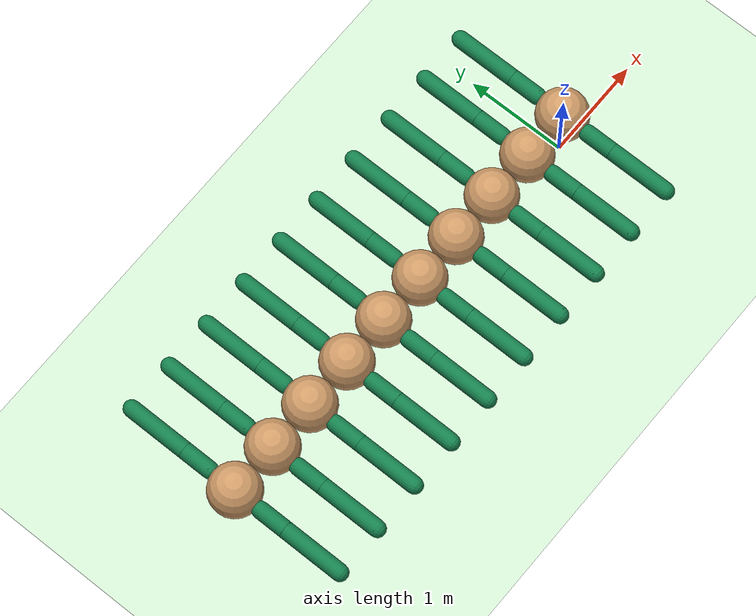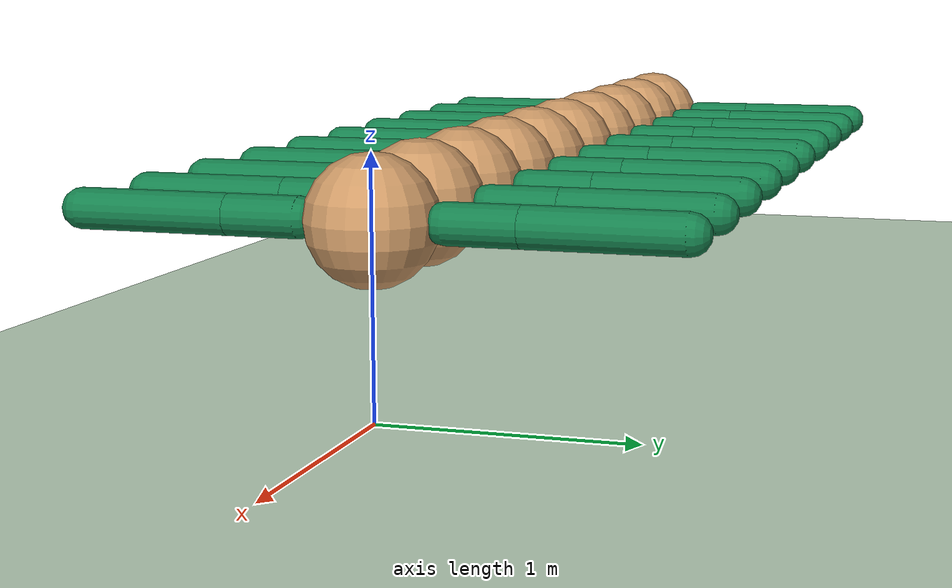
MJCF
<mujoco model="centipede">
  <compiler angle="degree" coordinate="local" inertiafromgeom="true"/>

  <option integrator="RK4" timestep="0.01"/>

  <default>
    <joint armature="1" damping="1" limited="true"/>
    <geom conaffinity="0" condim="3" density="25.0" friction="1.5 0.1 0.1" margin="0.01" rgba="0.8 0.6 0.4 1"/>
  </default>

  <asset>
    <texture builtin="gradient" height="100" rgb1="1 1 1" rgb2="0 0 0" type="skybox" width="100"/>
    <texture builtin="flat" height="1278" mark="cross" markrgb="1 1 1" name="texgeom" random="0.01" rgb1="0.8 0.6 0.4" rgb2="0.8 0.6 0.4" type="cube" width="127"/>
    <texture builtin="checker" height="100" name="texplane" rgb1="0 0 0" rgb2="0.8 0.8 0.8" type="2d" width="100"/>
    <material name="MatPlane" reflectance="0.5" shininess="1" specular="1" texrepeat="60 60" texture="texplane"/>
    <material name="geom" texture="texgeom" texuniform="true"/>
  </asset>

  <worldbody>
    <light cutoff="100" diffuse="1 1 1" dir="-0 0 -1.3" directional="true" exponent="1" pos="0 0 1.3" specular=".1 .1 .1"/>
    <geom conaffinity="1" condim="3" material="MatPlane" name="floor" pos="0 0 0" rgba="0.8 0.9 0.8 1" size="40 40 40" type="plane"/>
    <body name="torso" pos="0 0 0.75">
      <camera name="track" mode="trackcom" pos="0 -10 2" xyaxes="1 0 0 0 0 1"/>
      <geom name="torso_geom" pos="0 0 0" size="0.25" type="sphere" density="100"/>
      <joint armature="0" damping="0" limited="false" margin="0.01" name="root" pos="0 0 0" type="free"/>

      <body name="left_leg_0" pos="0.0 -0.28 0">
        <joint axis="0 0 1" name="hip_left_0" pos="0.0 0.0 0.0" range="-40 40" type="hinge"/>
        <geom fromto="0.0 0.0 0.0 0.0 -0.28 0.0" name="left_leg_0_geom" size="0.08" type="capsule" rgba=".08 .5 .3 1"/>
        <body pos="0 -0.28 0" name="aux_left_0">
          <joint axis="1 0 0" name="ankle_left_0" pos="0.0 0.0 0.0" range="30 100" type="hinge"/>
          <geom fromto="0.0 0.0 0.0 0 -0.6 0.0" name="left_ankle_0_geom" size="0.08" type="capsule" rgba=".08 .5 .3 1"/>
        </body>
      </body>

      <body name="right_leg_0" pos="0.0 0.28 0">
        <joint axis="0 0 -1" name="hip_right_0" pos="0.0 0.0 0.0" range="-40 40" type="hinge"/>
        <geom fromto="0.0 0.0 0.0 0.0 0.28 0.0" name="right_leg_0_geom" size="0.08" type="capsule" rgba=".08 .5 .3 1"/>
        <body pos="0 0.28 0" name="aux_right_0">
          <joint axis="-1 0 0" name="ankle_right_0" pos="0.0 0.0 0.0" range="30 100" type="hinge"/>
          <geom fromto="0.0 0.0 0.0 0 0.6 0.0" name="right_ankle_0_geom" size="0.08" type="capsule" rgba=".08 .5 .3 1"/>
        </body>
      </body>
        <body name="torso_1" pos="-0.50 0 0">
          <geom name="torso_1_geom" pos="0 0 0" size="0.25" type="sphere" density="100"/>
          <joint axis="0 0 1" name="connector_rl_1" pos="0.25 0.0 0.0" range="-20 20" type="hinge"/>
          <joint axis="0 1 0" name="connector_ud_1" pos="0.25 0.0 0.0" range="-10 30" type="hinge"/>

          <body name="left_leg_1" pos="0.0 -0.28 0">
            <joint axis="0 0 1" name="hip_left_1" pos="0.0 0.0 0.0" range="-40 40" type="hinge"/>
            <geom fromto="0.0 0.0 0.0 0.0 -0.28 0.0" name="left_leg_1_geom" size="0.08" type="capsule" rgba=".08 .5 .3 1"/>
            <body pos="0 -0.28 0" name="aux_left_1">
              <joint axis="1 0 0" name="ankle_left_1" pos="0.0 0.0 0.0" range="30 100" type="hinge"/>
              <geom fromto="0.0 0.0 0.0 0 -0.6 0.0" name="left_ankle_1_geom" size="0.08" type="capsule" rgba=".08 .5 .3 1"/>
            </body>
          </body>

          <body name="right_leg_1" pos="0.0 0.28 0">
            <joint axis="0 0 -1" name="hip_right_1" pos="0.0 0.0 0.0" range="-40 40" type="hinge"/>
            <geom fromto="0.0 0.0 0.0 0.0 0.28 0.0" name="right_leg_1_geom" size="0.08" type="capsule" rgba=".08 .5 .3 1"/>
            <body pos="0 0.28 0" name="aux_right_1">
              <joint axis="-1 0 0" name="ankle_right_1" pos="0.0 0.0 0.0" range="30 100" type="hinge"/>
              <geom fromto="0.0 0.0 0.0 0 0.6 0.0" name="right_ankle_1_geom" size="0.08" type="capsule" rgba=".08 .5 .3 1"/>
            </body>
          </body>
          <body name="torso_2" pos="-0.50 0 0">
            <geom name="torso_2_geom" pos="0 0 0" size="0.25" type="sphere" density="100"/>
            <joint axis="0 0 1" name="connector_rl_2" pos="0.25 0.0 0.0" range="-20 20" type="hinge"/>
            <joint axis="0 1 0" name="connector_ud_2" pos="0.25 0.0 0.0" range="-10 30" type="hinge"/>

            <body name="left_leg_2" pos="0.0 -0.28 0">
              <joint axis="0 0 1" name="hip_left_2" pos="0.0 0.0 0.0" range="-40 40" type="hinge"/>
              <geom fromto="0.0 0.0 0.0 0.0 -0.28 0.0" name="left_leg_2_geom" size="0.08" type="capsule" rgba=".08 .5 .3 1"/>
              <body pos="0 -0.28 0" name="aux_left_2">
                <joint axis="1 0 0" name="ankle_left_2" pos="0.0 0.0 0.0" range="30 100" type="hinge"/>
                <geom fromto="0.0 0.0 0.0 0 -0.6 0.0" name="left_ankle_2_geom" size="0.08" type="capsule" rgba=".08 .5 .3 1"/>
              </body>
            </body>

            <body name="right_leg_2" pos="0.0 0.28 0">
              <joint axis="0 0 -1" name="hip_right_2" pos="0.0 0.0 0.0" range="-40 40" type="hinge"/>
              <geom fromto="0.0 0.0 0.0 0.0 0.28 0.0" name="right_leg_2_geom" size="0.08" type="capsule" rgba=".08 .5 .3 1"/>
              <body pos="0 0.28 0" name="aux_right_2">
                <joint axis="-1 0 0" name="ankle_right_2" pos="0.0 0.0 0.0" range="30 100" type="hinge"/>
                <geom fromto="0.0 0.0 0.0 0 0.6 0.0" name="right_ankle_2_geom" size="0.08" type="capsule" rgba=".08 .5 .3 1"/>
              </body>
            </body>
            <body name="torso_3" pos="-0.50 0 0">
              <geom name="torso_3_geom" pos="0 0 0" size="0.25" type="sphere" density="100"/>
              <joint axis="0 0 1" name="connector_rl_3" pos="0.25 0.0 0.0" range="-20 20" type="hinge"/>
              <joint axis="0 1 0" name="connector_ud_3" pos="0.25 0.0 0.0" range="-10 30" type="hinge"/>

              <body name="left_leg_3" pos="0.0 -0.28 0">
                <joint axis="0 0 1" name="hip_left_3" pos="0.0 0.0 0.0" range="-40 40" type="hinge"/>
                <geom fromto="0.0 0.0 0.0 0.0 -0.28 0.0" name="left_leg_3_geom" size="0.08" type="capsule" rgba=".08 .5 .3 1"/>
                <body pos="0 -0.28 0" name="aux_left_3">
                  <joint axis="1 0 0" name="ankle_left_3" pos="0.0 0.0 0.0" range="30 100" type="hinge"/>
                  <geom fromto="0.0 0.0 0.0 0 -0.6 0.0" name="left_ankle_3_geom" size="0.08" type="capsule" rgba=".08 .5 .3 1"/>
                </body>
              </body>

              <body name="right_leg_3" pos="0.0 0.28 0">
                <joint axis="0 0 -1" name="hip_right_3" pos="0.0 0.0 0.0" range="-40 40" type="hinge"/>
                <geom fromto="0.0 0.0 0.0 0.0 0.28 0.0" name="right_leg_3_geom" size="0.08" type="capsule" rgba=".08 .5 .3 1"/>
                <body pos="0 0.28 0" name="aux_right_3">
                  <joint axis="-1 0 0" name="ankle_right_3" pos="0.0 0.0 0.0" range="30 100" type="hinge"/>
                  <geom fromto="0.0 0.0 0.0 0 0.6 0.0" name="right_ankle_3_geom" size="0.08" type="capsule" rgba=".08 .5 .3 1"/>
                </body>
              </body>
              <body name="torso_4" pos="-0.50 0 0">
                <geom name="torso_4_geom" pos="0 0 0" size="0.25" type="sphere" density="100"/>
                <joint axis="0 0 1" name="connector_rl_4" pos="0.25 0.0 0.0" range="-20 20" type="hinge"/>
                <joint axis="0 1 0" name="connector_ud_4" pos="0.25 0.0 0.0" range="-10 30" type="hinge"/>

                <body name="left_leg_4" pos="0.0 -0.28 0">
                  <joint axis="0 0 1" name="hip_left_4" pos="0.0 0.0 0.0" range="-40 40" type="hinge"/>
                  <geom fromto="0.0 0.0 0.0 0.0 -0.28 0.0" name="left_leg_4_geom" size="0.08" type="capsule" rgba=".08 .5 .3 1"/>
                  <body pos="0 -0.28 0" name="aux_left_4">
                    <joint axis="1 0 0" name="ankle_left_4" pos="0.0 0.0 0.0" range="30 100" type="hinge"/>
                    <geom fromto="0.0 0.0 0.0 0 -0.6 0.0" name="left_ankle_4_geom" size="0.08" type="capsule" rgba=".08 .5 .3 1"/>
                  </body>
                </body>

                <body name="right_leg_4" pos="0.0 0.28 0">
                  <joint axis="0 0 -1" name="hip_right_4" pos="0.0 0.0 0.0" range="-40 40" type="hinge"/>
                  <geom fromto="0.0 0.0 0.0 0.0 0.28 0.0" name="right_leg_4_geom" size="0.08" type="capsule" rgba=".08 .5 .3 1"/>
                  <body pos="0 0.28 0" name="aux_right_4">
                    <joint axis="-1 0 0" name="ankle_right_4" pos="0.0 0.0 0.0" range="30 100" type="hinge"/>
                    <geom fromto="0.0 0.0 0.0 0 0.6 0.0" name="right_ankle_4_geom" size="0.08" type="capsule" rgba=".08 .5 .3 1"/>
                  </body>
                </body>
                <body name="torso_5" pos="-0.50 0 0">
                  <geom name="torso_5_geom" pos="0 0 0" size="0.25" type="sphere" density="100"/>
                  <joint axis="0 0 1" name="connector_rl_5" pos="0.25 0.0 0.0" range="-20 20" type="hinge"/>
                  <joint axis="0 1 0" name="connector_ud_5" pos="0.25 0.0 0.0" range="-10 30" type="hinge"/>

                  <body name="left_leg_5" pos="0.0 -0.28 0">
                    <joint axis="0 0 1" name="hip_left_5" pos="0.0 0.0 0.0" range="-40 40" type="hinge"/>
                    <geom fromto="0.0 0.0 0.0 0.0 -0.28 0.0" name="left_leg_5_geom" size="0.08" type="capsule" rgba=".08 .5 .3 1"/>
                    <body pos="0 -0.28 0" name="aux_left_5">
                      <joint axis="1 0 0" name="ankle_left_5" pos="0.0 0.0 0.0" range="30 100" type="hinge"/>
                      <geom fromto="0.0 0.0 0.0 0 -0.6 0.0" name="left_ankle_5_geom" size="0.08" type="capsule" rgba=".08 .5 .3 1"/>
                    </body>
                  </body>

                  <body name="right_leg_5" pos="0.0 0.28 0">
                    <joint axis="0 0 -1" name="hip_right_5" pos="0.0 0.0 0.0" range="-40 40" type="hinge"/>
                    <geom fromto="0.0 0.0 0.0 0.0 0.28 0.0" name="right_leg_5_geom" size="0.08" type="capsule" rgba=".08 .5 .3 1"/>
                    <body pos="0 0.28 0" name="aux_right_5">
                      <joint axis="-1 0 0" name="ankle_right_5" pos="0.0 0.0 0.0" range="30 100" type="hinge"/>
                      <geom fromto="0.0 0.0 0.0 0 0.6 0.0" name="right_ankle_5_geom" size="0.08" type="capsule" rgba=".08 .5 .3 1"/>
                    </body>
                  </body>
                  <body name="torso_6" pos="-0.50 0 0">
                    <geom name="torso_6_geom" pos="0 0 0" size="0.25" type="sphere" density="100"/>
                    <joint axis="0 0 1" name="connector_rl_6" pos="0.25 0.0 0.0" range="-20 20" type="hinge"/>
                    <joint axis="0 1 0" name="connector_ud_6" pos="0.25 0.0 0.0" range="-10 30" type="hinge"/>

                    <body name="left_leg_6" pos="0.0 -0.28 0">
                      <joint axis="0 0 1" name="hip_left_6" pos="0.0 0.0 0.0" range="-40 40" type="hinge"/>
                      <geom fromto="0.0 0.0 0.0 0.0 -0.28 0.0" name="left_leg_6_geom" size="0.08" type="capsule" rgba=".08 .5 .3 1"/>
                      <body pos="0 -0.28 0" name="aux_left_6">
                        <joint axis="1 0 0" name="ankle_left_6" pos="0.0 0.0 0.0" range="30 100" type="hinge"/>
                        <geom fromto="0.0 0.0 0.0 0 -0.6 0.0" name="left_ankle_6_geom" size="0.08" type="capsule" rgba=".08 .5 .3 1"/>
                      </body>
                    </body>

                    <body name="right_leg_6" pos="0.0 0.28 0">
                      <joint axis="0 0 -1" name="hip_right_6" pos="0.0 0.0 0.0" range="-40 40" type="hinge"/>
                      <geom fromto="0.0 0.0 0.0 0.0 0.28 0.0" name="right_leg_6_geom" size="0.08" type="capsule" rgba=".08 .5 .3 1"/>
                      <body pos="0 0.28 0" name="aux_right_6">
                        <joint axis="-1 0 0" name="ankle_right_6" pos="0.0 0.0 0.0" range="30 100" type="hinge"/>
                        <geom fromto="0.0 0.0 0.0 0 0.6 0.0" name="right_ankle_6_geom" size="0.08" type="capsule" rgba=".08 .5 .3 1"/>
                      </body>
                    </body>
                    <body name="torso_7" pos="-0.50 0 0">
                      <geom name="torso_7_geom" pos="0 0 0" size="0.25" type="sphere" density="100"/>
                      <joint axis="0 0 1" name="connector_rl_7" pos="0.25 0.0 0.0" range="-20 20" type="hinge"/>
                      <joint axis="0 1 0" name="connector_ud_7" pos="0.25 0.0 0.0" range="-10 30" type="hinge"/>

                      <body name="left_leg_7" pos="0.0 -0.28 0">
                        <joint axis="0 0 1" name="hip_left_7" pos="0.0 0.0 0.0" range="-40 40" type="hinge"/>
                        <geom fromto="0.0 0.0 0.0 0.0 -0.28 0.0" name="left_leg_7_geom" size="0.08" type="capsule" rgba=".08 .5 .3 1"/>
                        <body pos="0 -0.28 0" name="aux_left_7">
                          <joint axis="1 0 0" name="ankle_left_7" pos="0.0 0.0 0.0" range="30 100" type="hinge"/>
                          <geom fromto="0.0 0.0 0.0 0 -0.6 0.0" name="left_ankle_7_geom" size="0.08" type="capsule" rgba=".08 .5 .3 1"/>
                        </body>
                      </body>

                      <body name="right_leg_7" pos="0.0 0.28 0">
                        <joint axis="0 0 -1" name="hip_right_7" pos="0.0 0.0 0.0" range="-40 40" type="hinge"/>
                        <geom fromto="0.0 0.0 0.0 0.0 0.28 0.0" name="right_leg_7_geom" size="0.08" type="capsule" rgba=".08 .5 .3 1"/>
                        <body pos="0 0.28 0" name="aux_right_7">
                          <joint axis="-1 0 0" name="ankle_right_7" pos="0.0 0.0 0.0" range="30 100" type="hinge"/>
                          <geom fromto="0.0 0.0 0.0 0 0.6 0.0" name="right_ankle_7_geom" size="0.08" type="capsule" rgba=".08 .5 .3 1"/>
                        </body>
                      </body>
                      <body name="torso_8" pos="-0.50 0 0">
                        <geom name="torso_8_geom" pos="0 0 0" size="0.25" type="sphere" density="100"/>
                        <joint axis="0 0 1" name="connector_rl_8" pos="0.25 0.0 0.0" range="-20 20" type="hinge"/>
                        <joint axis="0 1 0" name="connector_ud_8" pos="0.25 0.0 0.0" range="-10 30" type="hinge"/>

                        <body name="left_leg_8" pos="0.0 -0.28 0">
                          <joint axis="0 0 1" name="hip_left_8" pos="0.0 0.0 0.0" range="-40 40" type="hinge"/>
                          <geom fromto="0.0 0.0 0.0 0.0 -0.28 0.0" name="left_leg_8_geom" size="0.08" type="capsule" rgba=".08 .5 .3 1"/>
                          <body pos="0 -0.28 0" name="aux_left_8">
                            <joint axis="1 0 0" name="ankle_left_8" pos="0.0 0.0 0.0" range="30 100" type="hinge"/>
                            <geom fromto="0.0 0.0 0.0 0 -0.6 0.0" name="left_ankle_8_geom" size="0.08" type="capsule" rgba=".08 .5 .3 1"/>
                          </body>
                        </body>

                        <body name="right_leg_8" pos="0.0 0.28 0">
                          <joint axis="0 0 -1" name="hip_right_8" pos="0.0 0.0 0.0" range="-40 40" type="hinge"/>
                          <geom fromto="0.0 0.0 0.0 0.0 0.28 0.0" name="right_leg_8_geom" size="0.08" type="capsule" rgba=".08 .5 .3 1"/>
                          <body pos="0 0.28 0" name="aux_right_8">
                            <joint axis="-1 0 0" name="ankle_right_8" pos="0.0 0.0 0.0" range="30 100" type="hinge"/>
                            <geom fromto="0.0 0.0 0.0 0 0.6 0.0" name="right_ankle_8_geom" size="0.08" type="capsule" rgba=".08 .5 .3 1"/>
                          </body>
                        </body>
                        <body name="torso_9" pos="-0.50 0 0">
                          <geom name="torso_9_geom" pos="0 0 0" size="0.25" type="sphere" density="100"/>
                          <joint axis="0 0 1" name="connector_rl_9" pos="0.25 0.0 0.0" range="-20 20" type="hinge"/>
                          <joint axis="0 1 0" name="connector_ud_9" pos="0.25 0.0 0.0" range="-10 30" type="hinge"/>

                          <body name="left_leg_9" pos="0.0 -0.28 0">
                            <joint axis="0 0 1" name="hip_left_9" pos="0.0 0.0 0.0" range="-40 40" type="hinge"/>
                            <geom fromto="0.0 0.0 0.0 0.0 -0.28 0.0" name="left_leg_9_geom" size="0.08" type="capsule" rgba=".08 .5 .3 1"/>
                            <body pos="0 -0.28 0" name="aux_left_9">
                              <joint axis="1 0 0" name="ankle_left_9" pos="0.0 0.0 0.0" range="30 100" type="hinge"/>
                              <geom fromto="0.0 0.0 0.0 0 -0.6 0.0" name="left_ankle_9_geom" size="0.08" type="capsule" rgba=".08 .5 .3 1"/>
                            </body>
                          </body>

                          <body name="right_leg_9" pos="0.0 0.28 0">
                            <joint axis="0 0 -1" name="hip_right_9" pos="0.0 0.0 0.0" range="-40 40" type="hinge"/>
                            <geom fromto="0.0 0.0 0.0 0.0 0.28 0.0" name="right_leg_9_geom" size="0.08" type="capsule" rgba=".08 .5 .3 1"/>
                            <body pos="0 0.28 0" name="aux_right_9">
                              <joint axis="-1 0 0" name="ankle_right_9" pos="0.0 0.0 0.0" range="30 100" type="hinge"/>
                              <geom fromto="0.0 0.0 0.0 0 0.6 0.0" name="right_ankle_9_geom" size="0.08" type="capsule" rgba=".08 .5 .3 1"/>
                            </body>
                          </body>
                        </body>
                      </body>
                    </body>
                  </body>
                </body>
              </body>
            </body>
          </body>
        </body>
      </body>
  </worldbody>

  <actuator>
    <motor ctrllimited="true" ctrlrange="-1.0 1.0" joint="hip_left_0" gear="75"/>
    <motor ctrllimited="true" ctrlrange="-1.0 1.0" joint="ankle_left_0" gear="75"/>
    <motor ctrllimited="true" ctrlrange="-1.0 1.0" joint="hip_right_0" gear="75"/>
    <motor ctrllimited="true" ctrlrange="-1.0 1.0" joint="ankle_right_0" gear="75"/>
    <motor ctrllimited="true" ctrlrange="-1.0 1.0" joint="connector_rl_1" gear="50"/>
    <motor ctrllimited="true" ctrlrange="-1.0 1.0" joint="connector_ud_1" gear="50"/>
    <motor ctrllimited="true" ctrlrange="-1.0 1.0" joint="hip_left_1" gear="75"/>
    <motor ctrllimited="true" ctrlrange="-1.0 1.0" joint="ankle_left_1" gear="75"/>
    <motor ctrllimited="true" ctrlrange="-1.0 1.0" joint="hip_right_1" gear="75"/>
    <motor ctrllimited="true" ctrlrange="-1.0 1.0" joint="ankle_right_1" gear="75"/>
    <motor ctrllimited="true" ctrlrange="-1.0 1.0" joint="connector_rl_2" gear="50"/>
    <motor ctrllimited="true" ctrlrange="-1.0 1.0" joint="connector_ud_2" gear="50"/>
    <motor ctrllimited="true" ctrlrange="-1.0 1.0" joint="hip_left_2" gear="75"/>
    <motor ctrllimited="true" ctrlrange="-1.0 1.0" joint="ankle_left_2" gear="75"/>
    <motor ctrllimited="true" ctrlrange="-1.0 1.0" joint="hip_right_2" gear="75"/>
    <motor ctrllimited="true" ctrlrange="-1.0 1.0" joint="ankle_right_2" gear="75"/>
    <motor ctrllimited="true" ctrlrange="-1.0 1.0" joint="connector_rl_3" gear="50"/>
    <motor ctrllimited="true" ctrlrange="-1.0 1.0" joint="connector_ud_3" gear="50"/>
    <motor ctrllimited="true" ctrlrange="-1.0 1.0" joint="hip_left_3" gear="75"/>
    <motor ctrllimited="true" ctrlrange="-1.0 1.0" joint="ankle_left_3" gear="75"/>
    <motor ctrllimited="true" ctrlrange="-1.0 1.0" joint="hip_right_3" gear="75"/>
    <motor ctrllimited="true" ctrlrange="-1.0 1.0" joint="ankle_right_3" gear="75"/>
    <motor ctrllimited="true" ctrlrange="-1.0 1.0" joint="connector_rl_4" gear="50"/>
    <motor ctrllimited="true" ctrlrange="-1.0 1.0" joint="connector_ud_4" gear="50"/>
    <motor ctrllimited="true" ctrlrange="-1.0 1.0" joint="hip_left_4" gear="75"/>
    <motor ctrllimited="true" ctrlrange="-1.0 1.0" joint="ankle_left_4" gear="75"/>
    <motor ctrllimited="true" ctrlrange="-1.0 1.0" joint="hip_right_4" gear="75"/>
    <motor ctrllimited="true" ctrlrange="-1.0 1.0" joint="ankle_right_4" gear="75"/>
    <motor ctrllimited="true" ctrlrange="-1.0 1.0" joint="connector_rl_5" gear="50"/>
    <motor ctrllimited="true" ctrlrange="-1.0 1.0" joint="connector_ud_5" gear="50"/>
    <motor ctrllimited="true" ctrlrange="-1.0 1.0" joint="hip_left_5" gear="75"/>
    <motor ctrllimited="true" ctrlrange="-1.0 1.0" joint="ankle_left_5" gear="75"/>
    <motor ctrllimited="true" ctrlrange="-1.0 1.0" joint="hip_right_5" gear="75"/>
    <motor ctrllimited="true" ctrlrange="-1.0 1.0" joint="ankle_right_5" gear="75"/>
    <motor ctrllimited="true" ctrlrange="-1.0 1.0" joint="connector_rl_6" gear="50"/>
    <motor ctrllimited="true" ctrlrange="-1.0 1.0" joint="connector_ud_6" gear="50"/>
    <motor ctrllimited="true" ctrlrange="-1.0 1.0" joint="hip_left_6" gear="75"/>
    <motor ctrllimited="true" ctrlrange="-1.0 1.0" joint="ankle_left_6" gear="75"/>
    <motor ctrllimited="true" ctrlrange="-1.0 1.0" joint="hip_right_6" gear="75"/>
    <motor ctrllimited="true" ctrlrange="-1.0 1.0" joint="ankle_right_6" gear="75"/>
    <motor ctrllimited="true" ctrlrange="-1.0 1.0" joint="connector_rl_7" gear="50"/>
    <motor ctrllimited="true" ctrlrange="-1.0 1.0" joint="connector_ud_7" gear="50"/>
    <motor ctrllimited="true" ctrlrange="-1.0 1.0" joint="hip_left_7" gear="75"/>
    <motor ctrllimited="true" ctrlrange="-1.0 1.0" joint="ankle_left_7" gear="75"/>
    <motor ctrllimited="true" ctrlrange="-1.0 1.0" joint="hip_right_7" gear="75"/>
    <motor ctrllimited="true" ctrlrange="-1.0 1.0" joint="ankle_right_7" gear="75"/>
    <motor ctrllimited="true" ctrlrange="-1.0 1.0" joint="connector_rl_8" gear="50"/>
    <motor ctrllimited="true" ctrlrange="-1.0 1.0" joint="connector_ud_8" gear="50"/>
    <motor ctrllimited="true" ctrlrange="-1.0 1.0" joint="hip_left_8" gear="75"/>
    <motor ctrllimited="true" ctrlrange="-1.0 1.0" joint="ankle_left_8" gear="75"/>
    <motor ctrllimited="true" ctrlrange="-1.0 1.0" joint="hip_right_8" gear="75"/>
    <motor ctrllimited="true" ctrlrange="-1.0 1.0" joint="ankle_right_8" gear="75"/>
    <motor ctrllimited="true" ctrlrange="-1.0 1.0" joint="connector_rl_9" gear="50"/>
    <motor ctrllimited="true" ctrlrange="-1.0 1.0" joint="connector_ud_9" gear="50"/>
    <motor ctrllimited="true" ctrlrange="-1.0 1.0" joint="hip_left_9" gear="75"/>
    <motor ctrllimited="true" ctrlrange="-1.0 1.0" joint="ankle_left_9" gear="75"/>
    <motor ctrllimited="true" ctrlrange="-1.0 1.0" joint="hip_right_9" gear="75"/>
    <motor ctrllimited="true" ctrlrange="-1.0 1.0" joint="ankle_right_9" gear="75"/>
  </actuator>

  <custom>
    <numeric data="0.0 0.0 0.55 1.0 0.0 0.0 0.0 0.0 -1.0 0.0 1.0 0.0 -1.0 0.0 1.0 0.0 -1.0 0.0 1.0" name="init_qpos"/>
  </custom>

</mujoco>
